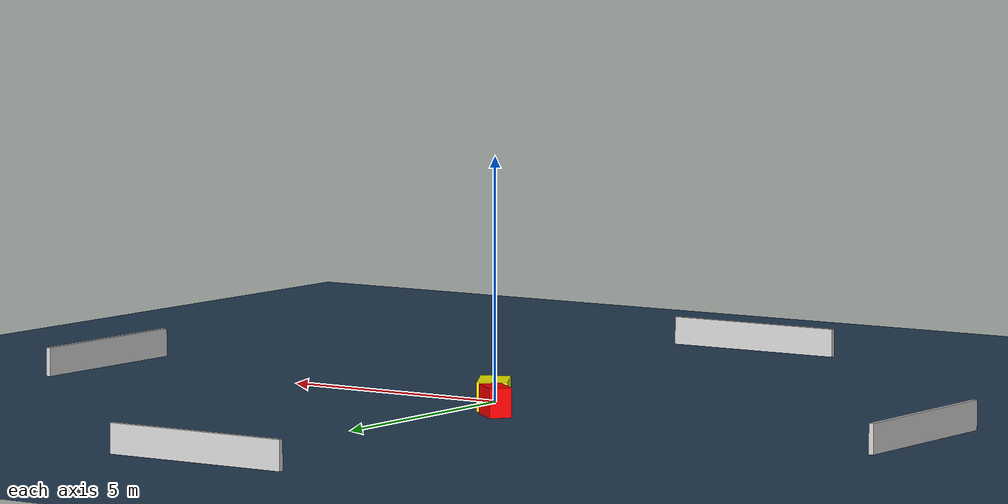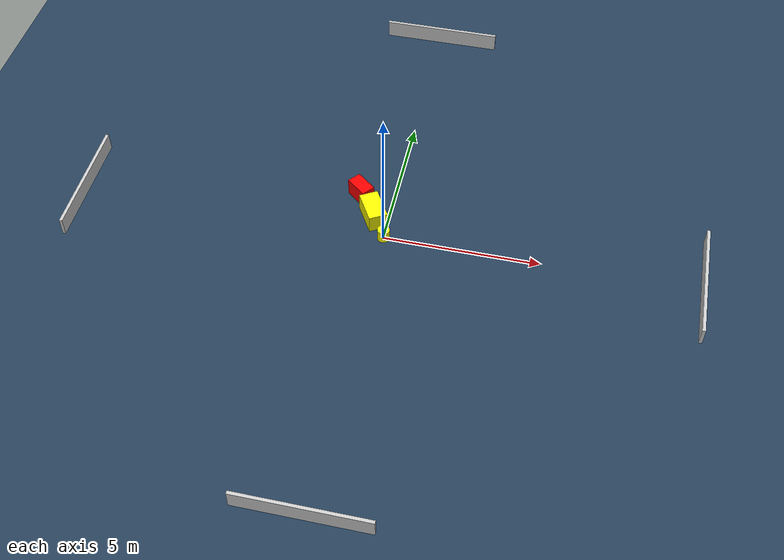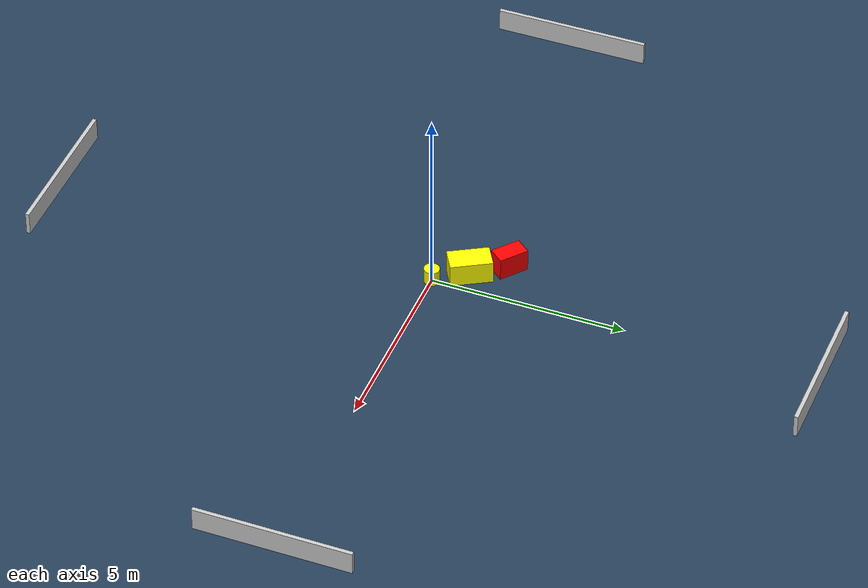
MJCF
<?xml version="1.0" ?>
<mujoco model="generated_environment">
  <option timestep="0.01" integrator="RK4" cone="elliptic"/>
  <default>
    <geom density="1"/>
  </default>
  <asset>
    <texture builtin="gradient" height="3072" name="skybox" rgb1="0.3 0.5 0.7" rgb2="0 0 0" type="skybox" width="512"/>
    <texture builtin="checker" height="300" name="groundplane" rgb1="0.2 0.3 0.4" rgb2="0.1 0.2 0.3" type="2d" width="300"/>
    <material name="groundplane" reflectance="0.2" texrepeat="5 5" texture="groundplane"/>
  </asset>
  <worldbody>
    <light dir="0 0 -1" directional="true" pos="0 0 1.5"/>
    <geom condim="3" friction="0.5 0.005 0.001" material="groundplane" name="floor" pos="0 0 0" size="0 0 0.05" type="plane"/>
    <body name="walls">
      <geom name="wall_1" condim="4" pos="-10.0 0.0 0.3" rgba="0.800000011920929 0.800000011920929 0.800000011920929 1.0" size="0.05 2.0 0.3" type="box"/>
      <geom name="wall_2" condim="4" pos="10.0 0.0 0.3" rgba="0.800000011920929 0.800000011920929 0.800000011920929 1.0" size="0.05 2.0 0.3" type="box"/>
      <geom name="wall_3" condim="4" pos="0.0 -10.0 0.3" rgba="0.800000011920929 0.800000011920929 0.800000011920929 1.0" size="2.0 0.05 0.3" type="box"/>
      <geom name="wall_4" condim="4" pos="0.0 10.0 0.3" rgba="0.800000011920929 0.800000011920929 0.800000011920929 1.0" size="2.0 0.05 0.3" type="box"/>
    </body>
    <body name="robot">
      <joint name="joint_x" type="slide" pos="0 0 0" axis="1 0 0"/>
      <joint name="joint_y" type="slide" pos="0 0 0" axis="0 1 0"/>
      <geom name="robot" type="cylinder" pos="0.0 0.0 0.2" size="0.2 0.2 0.0" mass="5.0" friction="1.0 0.005 0.0001" condim="4" rgba="1.0 1.0 0.0 1.0"/>
    </body>
    <body name="obstacle_1_movable">
      <geom name="obstacle_1_movable" condim="4" pos="-0.5120117469474403 0.7966870292108458 0.3" euler="0 0 30.168566961807457" friction="0.0 0.005 0.001" rgba="1.0 1.0 0.0 1.0" size="0.30686705673525844 0.5371446252185824 0.3" type="box" mass="0.1"/>
      <joint type="free"/>
    </body>
    <body name="obstacle_2_static">
      <geom name="obstacle_2_static" condim="4" pos="-1.1027045158515798 1.6172416375260759 0.3" euler="0 0 50.529814020712166" friction="0.0 0.005 0.001" rgba="1.0 0.0 0.0 1.0" size="0.22920973920927112 0.38900209003004504 0.3" type="box"/>
    </body>
  </worldbody>
  <actuator>
    <motor name="actuator_x" joint="joint_x" gear="1" ctrlrange="-1 1"/>
    <motor name="actuator_y" joint="joint_y" gear="1" ctrlrange="-1 1"/>
  </actuator>
</mujoco>
